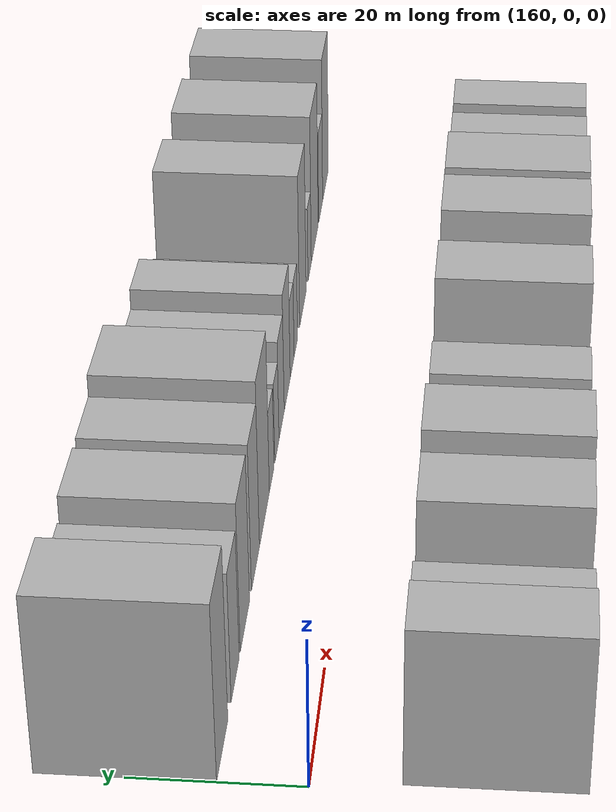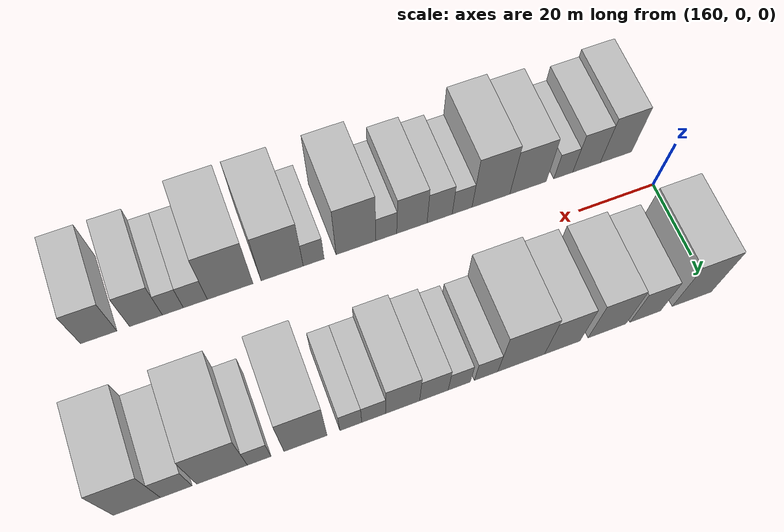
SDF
<sdf version="1.6">
 <world name="default">
  <model name="building_16">
   <static>1</static>
   <pose>165.0884 20.0000 0 0.000000 0.000000 1.570796</pose>
   <link name="link">
    <pose>0 0 12.00 0 0 0</pose>
    <collision name="collision"><geometry><box><size>20.0000 10.1989 24.0000</size></box></geometry></collision>
    <visual name="visual">
     <cast_shadows>0</cast_shadows>
     <geometry><box><size>20.0000 10.1989 24.0000</size></box></geometry>
     <material>
      <script>
       <uri>model://HANNAS_wall/materials/scripts</uri>
       <uri>model://HANNAS_wall/materials/textures</uri>
       <name>vrc/HANNAS_wall</name>
      </script>
     </material>
    </visual>
   </link>
  </model>
  <model name="building_17">
   <static>1</static>
   <pose>177.1372 20.0000 0 0.000000 0.000000 1.570796</pose>
   <link name="link">
    <pose>0 0 9.00 0 0 0</pose>
    <collision name="collision"><geometry><box><size>20.0000 7.8987 18.0000</size></box></geometry></collision>
    <visual name="visual">
     <cast_shadows>0</cast_shadows>
     <geometry><box><size>20.0000 7.8987 18.0000</size></box></geometry>
     <material>
      <script>
       <uri>model://HANNAS_wall/materials/scripts</uri>
       <uri>model://HANNAS_wall/materials/textures</uri>
       <name>vrc/HANNAS_wall</name>
      </script>
     </material>
    </visual>
   </link>
  </model>
  <model name="building_18">
   <static>1</static>
   <pose>186.9221 20.0000 0 0.000000 0.000000 1.570796</pose>
   <link name="link">
    <pose>0 0 10.50 0 0 0</pose>
    <collision name="collision"><geometry><box><size>20.0000 9.6711 21.0000</size></box></geometry></collision>
    <visual name="visual">
     <cast_shadows>0</cast_shadows>
     <geometry><box><size>20.0000 9.6711 21.0000</size></box></geometry>
     <material>
      <script>
       <uri>model://HANNAS_wall/materials/scripts</uri>
       <uri>model://HANNAS_wall/materials/textures</uri>
       <name>vrc/HANNAS_wall</name>
      </script>
     </material>
    </visual>
   </link>
  </model>
  <model name="building_19">
   <static>1</static>
   <pose>198.2208 20.0000 0 0.000000 0.000000 1.570796</pose>
   <link name="link">
    <pose>0 0 10.50 0 0 0</pose>
    <collision name="collision"><geometry><box><size>20.0000 8.9264 21.0000</size></box></geometry></collision>
    <visual name="visual">
     <cast_shadows>0</cast_shadows>
     <geometry><box><size>20.0000 8.9264 21.0000</size></box></geometry>
     <material>
      <script>
       <uri>model://HANNAS_wall/materials/scripts</uri>
       <uri>model://HANNAS_wall/materials/textures</uri>
       <name>vrc/HANNAS_wall</name>
      </script>
     </material>
    </visual>
   </link>
  </model>
  <model name="building_20">
   <static>1</static>
   <pose>208.4847 20.0000 0 0.000000 0.000000 1.570796</pose>
   <link name="link">
    <pose>0 0 12.00 0 0 0</pose>
    <collision name="collision"><geometry><box><size>20.0000 11.6013 24.0000</size></box></geometry></collision>
    <visual name="visual">
     <cast_shadows>0</cast_shadows>
     <geometry><box><size>20.0000 11.6013 24.0000</size></box></geometry>
     <material>
      <script>
       <uri>model://HANNAS_wall/materials/scripts</uri>
       <uri>model://HANNAS_wall/materials/textures</uri>
       <name>vrc/HANNAS_wall</name>
      </script>
     </material>
    </visual>
   </link>
  </model>
  <model name="building_21">
   <static>1</static>
   <pose>217.1560 20.0000 0 0.000000 0.000000 1.570796</pose>
   <link name="link">
    <pose>0 0 6.00 0 0 0</pose>
    <collision name="collision"><geometry><box><size>20.0000 5.7415 12.0000</size></box></geometry></collision>
    <visual name="visual">
     <cast_shadows>0</cast_shadows>
     <geometry><box><size>20.0000 5.7415 12.0000</size></box></geometry>
     <material>
      <script>
       <uri>model://HANNAS_wall/materials/scripts</uri>
       <uri>model://HANNAS_wall/materials/textures</uri>
       <name>vrc/HANNAS_wall</name>
      </script>
     </material>
    </visual>
   </link>
  </model>
  <model name="building_22">
   <static>1</static>
   <pose>223.7144 20.0000 0 0.000000 0.000000 1.570796</pose>
   <link name="link">
    <pose>0 0 6.00 0 0 0</pose>
    <collision name="collision"><geometry><box><size>20.0000 5.3753 12.0000</size></box></geometry></collision>
    <visual name="visual">
     <cast_shadows>0</cast_shadows>
     <geometry><box><size>20.0000 5.3753 12.0000</size></box></geometry>
     <material>
      <script>
       <uri>model://HANNAS_wall/materials/scripts</uri>
       <uri>model://HANNAS_wall/materials/textures</uri>
       <name>vrc/HANNAS_wall</name>
      </script>
     </material>
    </visual>
   </link>
  </model>
  <model name="building_23">
   <static>1</static>
   <pose>229.8600 20.0000 0 0.000000 0.000000 1.570796</pose>
   <link name="link">
    <pose>0 0 7.50 0 0 0</pose>
    <collision name="collision"><geometry><box><size>20.0000 6.9158 15.0000</size></box></geometry></collision>
    <visual name="visual">
     <cast_shadows>0</cast_shadows>
     <geometry><box><size>20.0000 6.9158 15.0000</size></box></geometry>
     <material>
      <script>
       <uri>model://HANNAS_wall/materials/scripts</uri>
       <uri>model://HANNAS_wall/materials/textures</uri>
       <name>vrc/HANNAS_wall</name>
      </script>
     </material>
    </visual>
   </link>
  </model>
  <model name="building_24">
   <static>1</static>
   <pose>237.3918 20.0000 0 0.000000 0.000000 1.570796</pose>
   <link name="link">
    <pose>0 0 9.00 0 0 0</pose>
    <collision name="collision"><geometry><box><size>20.0000 8.1478 18.0000</size></box></geometry></collision>
    <visual name="visual">
     <cast_shadows>0</cast_shadows>
     <geometry><box><size>20.0000 8.1478 18.0000</size></box></geometry>
     <material>
      <script>
       <uri>model://HANNAS_wall/materials/scripts</uri>
       <uri>model://HANNAS_wall/materials/textures</uri>
       <name>vrc/HANNAS_wall</name>
      </script>
     </material>
    </visual>
   </link>
  </model>
  <model name="building_25">
   <static>1</static>
   <pose>244.2864 20.0000 0 0.000000 0.000000 1.570796</pose>
   <link name="link">
    <pose>0 0 6.00 0 0 0</pose>
    <collision name="collision"><geometry><box><size>20.0000 5.6413 12.0000</size></box></geometry></collision>
    <visual name="visual">
     <cast_shadows>0</cast_shadows>
     <geometry><box><size>20.0000 5.6413 12.0000</size></box></geometry>
     <material>
      <script>
       <uri>model://HANNAS_wall/materials/scripts</uri>
       <uri>model://HANNAS_wall/materials/textures</uri>
       <name>vrc/HANNAS_wall</name>
      </script>
     </material>
    </visual>
   </link>
  </model>
  <model name="building_26">
   <static>1</static>
   <pose>249.6790 20.0000 0 0.000000 0.000000 1.570796</pose>
   <link name="link">
    <pose>0 0 6.00 0 0 0</pose>
    <collision name="collision"><geometry><box><size>20.0000 5.1438 12.0000</size></box></geometry></collision>
    <visual name="visual">
     <cast_shadows>0</cast_shadows>
     <geometry><box><size>20.0000 5.1438 12.0000</size></box></geometry>
     <material>
      <script>
       <uri>model://HANNAS_wall/materials/scripts</uri>
       <uri>model://HANNAS_wall/materials/textures</uri>
       <name>vrc/HANNAS_wall</name>
      </script>
     </material>
    </visual>
   </link>
  </model>
  <model name="building_27">
   <static>1</static>
   <pose>260.2648 20.0000 0 0.000000 0.000000 1.570796</pose>
   <link name="link">
    <pose>0 0 12.00 0 0 0</pose>
    <collision name="collision"><geometry><box><size>20.0000 10.0279 24.0000</size></box></geometry></collision>
    <visual name="visual">
     <cast_shadows>0</cast_shadows>
     <geometry><box><size>20.0000 10.0279 24.0000</size></box></geometry>
     <material>
      <script>
       <uri>model://HANNAS_wall/materials/scripts</uri>
       <uri>model://HANNAS_wall/materials/textures</uri>
       <name>vrc/HANNAS_wall</name>
      </script>
     </material>
    </visual>
   </link>
  </model>
  <model name="building_28">
   <static>1</static>
   <pose>270.9927 20.0000 0 0.000000 0.000000 1.570796</pose>
   <link name="link">
    <pose>0 0 6.00 0 0 0</pose>
    <collision name="collision"><geometry><box><size>20.0000 5.4278 12.0000</size></box></geometry></collision>
    <visual name="visual">
     <cast_shadows>0</cast_shadows>
     <geometry><box><size>20.0000 5.4278 12.0000</size></box></geometry>
     <material>
      <script>
       <uri>model://HANNAS_wall/materials/scripts</uri>
       <uri>model://HANNAS_wall/materials/textures</uri>
       <name>vrc/HANNAS_wall</name>
      </script>
     </material>
    </visual>
   </link>
  </model>
  <model name="building_29">
   <static>1</static>
   <pose>279.4799 20.0000 0 0.000000 0.000000 1.570796</pose>
   <link name="link">
    <pose>0 0 12.00 0 0 0</pose>
    <collision name="collision"><geometry><box><size>20.0000 11.5467 24.0000</size></box></geometry></collision>
    <visual name="visual">
     <cast_shadows>0</cast_shadows>
     <geometry><box><size>20.0000 11.5467 24.0000</size></box></geometry>
     <material>
      <script>
       <uri>model://HANNAS_wall/materials/scripts</uri>
       <uri>model://HANNAS_wall/materials/textures</uri>
       <name>vrc/HANNAS_wall</name>
      </script>
     </material>
    </visual>
   </link>
  </model>
  <model name="building_30">
   <static>1</static>
   <pose>289.8093 20.0000 0 0.000000 0.000000 1.570796</pose>
   <link name="link">
    <pose>0 0 7.50 0 0 0</pose>
    <collision name="collision"><geometry><box><size>20.0000 7.1120 15.0000</size></box></geometry></collision>
    <visual name="visual">
     <cast_shadows>0</cast_shadows>
     <geometry><box><size>20.0000 7.1120 15.0000</size></box></geometry>
     <material>
      <script>
       <uri>model://HANNAS_wall/materials/scripts</uri>
       <uri>model://HANNAS_wall/materials/textures</uri>
       <name>vrc/HANNAS_wall</name>
      </script>
     </material>
    </visual>
   </link>
  </model>
  <model name="building_31">
   <static>1</static>
   <pose>298.6134 20.0000 0 0.000000 0.000000 1.570796</pose>
   <link name="link">
    <pose>0 0 12.00 0 0 0</pose>
    <collision name="collision"><geometry><box><size>20.0000 10.4963 24.0000</size></box></geometry></collision>
    <visual name="visual">
     <cast_shadows>0</cast_shadows>
     <geometry><box><size>20.0000 10.4963 24.0000</size></box></geometry>
     <material>
      <script>
       <uri>model://HANNAS_wall/materials/scripts</uri>
       <uri>model://HANNAS_wall/materials/textures</uri>
       <name>vrc/HANNAS_wall</name>
      </script>
     </material>
    </visual>
   </link>
  </model>
  <model name="building_48">
   <static>1</static>
   <pose>165.3166 -20.0000 0 0.000000 0.000000 1.570796</pose>
   <link name="link">
    <pose>0 0 10.50 0 0 0</pose>
    <collision name="collision"><geometry><box><size>20.0000 8.5658 21.0000</size></box></geometry></collision>
    <visual name="visual">
     <cast_shadows>0</cast_shadows>
     <geometry><box><size>20.0000 8.5658 21.0000</size></box></geometry>
     <material>
      <script>
       <uri>model://HANNAS_wall/materials/scripts</uri>
       <uri>model://HANNAS_wall/materials/textures</uri>
       <name>vrc/HANNAS_wall</name>
      </script>
     </material>
    </visual>
   </link>
  </model>
  <model name="building_49">
   <static>1</static>
   <pose>173.3273 -20.0000 0 0.000000 0.000000 1.570796</pose>
   <link name="link">
    <pose>0 0 9.00 0 0 0</pose>
    <collision name="collision"><geometry><box><size>20.0000 7.4556 18.0000</size></box></geometry></collision>
    <visual name="visual">
     <cast_shadows>0</cast_shadows>
     <geometry><box><size>20.0000 7.4556 18.0000</size></box></geometry>
     <material>
      <script>
       <uri>model://HANNAS_wall/materials/scripts</uri>
       <uri>model://HANNAS_wall/materials/textures</uri>
       <name>vrc/HANNAS_wall</name>
      </script>
     </material>
    </visual>
   </link>
  </model>
  <model name="building_50">
   <static>1</static>
   <pose>179.6098 -20.0000 0 0.000000 0.000000 1.570796</pose>
   <link name="link">
    <pose>0 0 6.00 0 0 0</pose>
    <collision name="collision"><geometry><box><size>20.0000 5.1095 12.0000</size></box></geometry></collision>
    <visual name="visual">
     <cast_shadows>0</cast_shadows>
     <geometry><box><size>20.0000 5.1095 12.0000</size></box></geometry>
     <material>
      <script>
       <uri>model://HANNAS_wall/materials/scripts</uri>
       <uri>model://HANNAS_wall/materials/textures</uri>
       <name>vrc/HANNAS_wall</name>
      </script>
     </material>
    </visual>
   </link>
  </model>
  <model name="building_51">
   <static>1</static>
   <pose>189.0306 -20.0000 0 0.000000 0.000000 1.570796</pose>
   <link name="link">
    <pose>0 0 10.50 0 0 0</pose>
    <collision name="collision"><geometry><box><size>20.0000 9.7321 21.0000</size></box></geometry></collision>
    <visual name="visual">
     <cast_shadows>0</cast_shadows>
     <geometry><box><size>20.0000 9.7321 21.0000</size></box></geometry>
     <material>
      <script>
       <uri>model://HANNAS_wall/materials/scripts</uri>
       <uri>model://HANNAS_wall/materials/textures</uri>
       <name>vrc/HANNAS_wall</name>
      </script>
     </material>
    </visual>
   </link>
  </model>
  <model name="building_52">
   <static>1</static>
   <pose>198.8782 -20.0000 0 0.000000 0.000000 1.570796</pose>
   <link name="link">
    <pose>0 0 12.00 0 0 0</pose>
    <collision name="collision"><geometry><box><size>20.0000 9.9631 24.0000</size></box></geometry></collision>
    <visual name="visual">
     <cast_shadows>0</cast_shadows>
     <geometry><box><size>20.0000 9.9631 24.0000</size></box></geometry>
     <material>
      <script>
       <uri>model://HANNAS_wall/materials/scripts</uri>
       <uri>model://HANNAS_wall/materials/textures</uri>
       <name>vrc/HANNAS_wall</name>
      </script>
     </material>
    </visual>
   </link>
  </model>
  <model name="building_53">
   <static>1</static>
   <pose>206.4517 -20.0000 0 0.000000 0.000000 1.570796</pose>
   <link name="link">
    <pose>0 0 6.00 0 0 0</pose>
    <collision name="collision"><geometry><box><size>20.0000 5.1838 12.0000</size></box></geometry></collision>
    <visual name="visual">
     <cast_shadows>0</cast_shadows>
     <geometry><box><size>20.0000 5.1838 12.0000</size></box></geometry>
     <material>
      <script>
       <uri>model://HANNAS_wall/materials/scripts</uri>
       <uri>model://HANNAS_wall/materials/textures</uri>
       <name>vrc/HANNAS_wall</name>
      </script>
     </material>
    </visual>
   </link>
  </model>
  <model name="building_54">
   <static>1</static>
   <pose>212.3059 -20.0000 0 0.000000 0.000000 1.570796</pose>
   <link name="link">
    <pose>0 0 7.50 0 0 0</pose>
    <collision name="collision"><geometry><box><size>20.0000 6.5247 15.0000</size></box></geometry></collision>
    <visual name="visual">
     <cast_shadows>0</cast_shadows>
     <geometry><box><size>20.0000 6.5247 15.0000</size></box></geometry>
     <material>
      <script>
       <uri>model://HANNAS_wall/materials/scripts</uri>
       <uri>model://HANNAS_wall/materials/textures</uri>
       <name>vrc/HANNAS_wall</name>
      </script>
     </material>
    </visual>
   </link>
  </model>
  <model name="building_55">
   <static>1</static>
   <pose>219.4754 -20.0000 0 0.000000 0.000000 1.570796</pose>
   <link name="link">
    <pose>0 0 9.00 0 0 0</pose>
    <collision name="collision"><geometry><box><size>20.0000 7.8142 18.0000</size></box></geometry></collision>
    <visual name="visual">
     <cast_shadows>0</cast_shadows>
     <geometry><box><size>20.0000 7.8142 18.0000</size></box></geometry>
     <material>
      <script>
       <uri>model://HANNAS_wall/materials/scripts</uri>
       <uri>model://HANNAS_wall/materials/textures</uri>
       <name>vrc/HANNAS_wall</name>
      </script>
     </material>
    </visual>
   </link>
  </model>
  <model name="building_56">
   <static>1</static>
   <pose>226.0486 -20.0000 0 0.000000 0.000000 1.570796</pose>
   <link name="link">
    <pose>0 0 6.00 0 0 0</pose>
    <collision name="collision"><geometry><box><size>20.0000 5.3323 12.0000</size></box></geometry></collision>
    <visual name="visual">
     <cast_shadows>0</cast_shadows>
     <geometry><box><size>20.0000 5.3323 12.0000</size></box></geometry>
     <material>
      <script>
       <uri>model://HANNAS_wall/materials/scripts</uri>
       <uri>model://HANNAS_wall/materials/textures</uri>
       <name>vrc/HANNAS_wall</name>
      </script>
     </material>
    </visual>
   </link>
  </model>
  <model name="building_57">
   <static>1</static>
   <pose>233.7494 -20.0000 0 0.000000 0.000000 1.570796</pose>
   <link name="link">
    <pose>0 0 12.00 0 0 0</pose>
    <collision name="collision"><geometry><box><size>20.0000 10.0693 24.0000</size></box></geometry></collision>
    <visual name="visual">
     <cast_shadows>0</cast_shadows>
     <geometry><box><size>20.0000 10.0693 24.0000</size></box></geometry>
     <material>
      <script>
       <uri>model://HANNAS_wall/materials/scripts</uri>
       <uri>model://HANNAS_wall/materials/textures</uri>
       <name>vrc/HANNAS_wall</name>
      </script>
     </material>
    </visual>
   </link>
  </model>
  <model name="building_58">
   <static>1</static>
   <pose>244.3952 -20.0000 0 0.000000 0.000000 1.570796</pose>
   <link name="link">
    <pose>0 0 6.00 0 0 0</pose>
    <collision name="collision"><geometry><box><size>20.0000 5.2221 12.0000</size></box></geometry></collision>
    <visual name="visual">
     <cast_shadows>0</cast_shadows>
     <geometry><box><size>20.0000 5.2221 12.0000</size></box></geometry>
     <material>
      <script>
       <uri>model://HANNAS_wall/materials/scripts</uri>
       <uri>model://HANNAS_wall/materials/textures</uri>
       <name>vrc/HANNAS_wall</name>
      </script>
     </material>
    </visual>
   </link>
  </model>
  <model name="building_59">
   <static>1</static>
   <pose>252.2390 -20.0000 0 0.000000 0.000000 1.570796</pose>
   <link name="link">
    <pose>0 0 12.00 0 0 0</pose>
    <collision name="collision"><geometry><box><size>20.0000 10.4656 24.0000</size></box></geometry></collision>
    <visual name="visual">
     <cast_shadows>0</cast_shadows>
     <geometry><box><size>20.0000 10.4656 24.0000</size></box></geometry>
     <material>
      <script>
       <uri>model://HANNAS_wall/materials/scripts</uri>
       <uri>model://HANNAS_wall/materials/textures</uri>
       <name>vrc/HANNAS_wall</name>
      </script>
     </material>
    </visual>
   </link>
  </model>
  <model name="building_60">
   <static>1</static>
   <pose>265.0601 -20.0000 0 0.000000 0.000000 1.570796</pose>
   <link name="link">
    <pose>0 0 12.00 0 0 0</pose>
    <collision name="collision"><geometry><box><size>20.0000 11.1766 24.0000</size></box></geometry></collision>
    <visual name="visual">
     <cast_shadows>0</cast_shadows>
     <geometry><box><size>20.0000 11.1766 24.0000</size></box></geometry>
     <material>
      <script>
       <uri>model://HANNAS_wall/materials/scripts</uri>
       <uri>model://HANNAS_wall/materials/textures</uri>
       <name>vrc/HANNAS_wall</name>
      </script>
     </material>
    </visual>
   </link>
  </model>
  <model name="building_61">
   <static>1</static>
   <pose>273.5473 -20.0000 0 0.000000 0.000000 1.570796</pose>
   <link name="link">
    <pose>0 0 6.00 0 0 0</pose>
    <collision name="collision"><geometry><box><size>20.0000 5.7977 12.0000</size></box></geometry></collision>
    <visual name="visual">
     <cast_shadows>0</cast_shadows>
     <geometry><box><size>20.0000 5.7977 12.0000</size></box></geometry>
     <material>
      <script>
       <uri>model://HANNAS_wall/materials/scripts</uri>
       <uri>model://HANNAS_wall/materials/textures</uri>
       <name>vrc/HANNAS_wall</name>
      </script>
     </material>
    </visual>
   </link>
  </model>
  <model name="building_62">
   <static>1</static>
   <pose>278.9661 -20.0000 0 0.000000 0.000000 1.570796</pose>
   <link name="link">
    <pose>0 0 6.00 0 0 0</pose>
    <collision name="collision"><geometry><box><size>20.0000 5.0399 12.0000</size></box></geometry></collision>
    <visual name="visual">
     <cast_shadows>0</cast_shadows>
     <geometry><box><size>20.0000 5.0399 12.0000</size></box></geometry>
     <material>
      <script>
       <uri>model://HANNAS_wall/materials/scripts</uri>
       <uri>model://HANNAS_wall/materials/textures</uri>
       <name>vrc/HANNAS_wall</name>
      </script>
     </material>
    </visual>
   </link>
  </model>
  <model name="building_63">
   <static>1</static>
   <pose>285.4106 -20.0000 0 0.000000 0.000000 1.570796</pose>
   <link name="link">
    <pose>0 0 9.00 0 0 0</pose>
    <collision name="collision"><geometry><box><size>20.0000 7.8490 18.0000</size></box></geometry></collision>
    <visual name="visual">
     <cast_shadows>0</cast_shadows>
     <geometry><box><size>20.0000 7.8490 18.0000</size></box></geometry>
     <material>
      <script>
       <uri>model://HANNAS_wall/materials/scripts</uri>
       <uri>model://HANNAS_wall/materials/textures</uri>
       <name>vrc/HANNAS_wall</name>
      </script>
     </material>
    </visual>
   </link>
  </model>
  <model name="building_64">
   <static>1</static>
   <pose>296.6237 -20.0000 0 0.000000 0.000000 1.570796</pose>
   <link name="link">
    <pose>0 0 9.00 0 0 0</pose>
    <collision name="collision"><geometry><box><size>20.0000 8.5773 18.0000</size></box></geometry></collision>
    <visual name="visual">
     <cast_shadows>0</cast_shadows>
     <geometry><box><size>20.0000 8.5773 18.0000</size></box></geometry>
     <material>
      <script>
       <uri>model://HANNAS_wall/materials/scripts</uri>
       <uri>model://HANNAS_wall/materials/textures</uri>
       <name>vrc/HANNAS_wall</name>
      </script>
     </material>
    </visual>
   </link>
  </model>
 </world>
</sdf>
